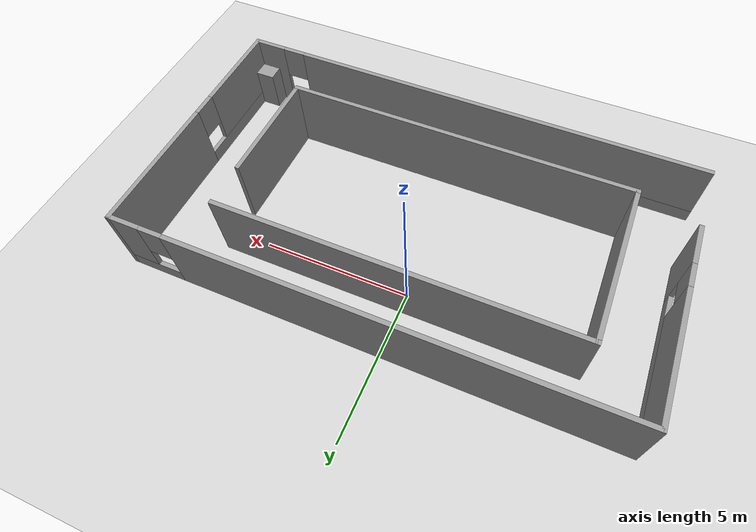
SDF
<sdf version="1.7">
 <world name="default">
  <light name="sun" type="directional">
   <pose>0 0 10 0 -0 0</pose>
   <diffuse>0.8 0.8 0.8 1</diffuse>
   <specular>0.2 0.2 0.2 1</specular>
   <attenuation>
    <range>1000</range>
    <constant>0.9</constant>
    <linear>0.01</linear>
    <quadratic>0.001</quadratic>
   </attenuation>
   <direction>-0.5 0.1 -0.9</direction>
   <spot><inner_angle>0</inner_angle><outer_angle>0</outer_angle><falloff>0</falloff></spot>
  </light>
  <model name="ground_plane">
   <static>1</static>
   <link name="link">
    <collision name="collision">
     <geometry><plane><normal>0 0 1</normal><size>100 100</size></plane></geometry>
     <surface><friction><ode><mu>100</mu><mu2>50</mu2></ode></friction></surface>
    </collision>
    <visual name="visual">
     <cast_shadows>0</cast_shadows>
     <geometry><plane><normal>0 0 1</normal><size>100 100</size></plane></geometry>
     <material>
      <script><uri>file://media/materials/scripts/gazebo.material</uri><name>Gazebo/Grey</name></script>
     </material>
    </visual>
   </link>
  </model>
  <gravity>0 0 -9.8</gravity>
  <magnetic_field>6e-06 2.3e-05 -4.2e-05</magnetic_field>
  <atmosphere type="adiabatic"/>
  <physics type="ode">
   <max_step_size>0.001</max_step_size>
   <real_time_factor>1</real_time_factor>
   <real_time_update_rate>1000</real_time_update_rate>
  </physics>
  <scene><ambient>0.4 0.4 0.4 1</ambient><background>0.7 0.7 0.7 1</background><shadows>1</shadows></scene>
  <spherical_coordinates>
   <surface_model>EARTH_WGS84</surface_model>
   <latitude_deg>0</latitude_deg>
   <longitude_deg>0</longitude_deg>
   <elevation>0</elevation>
   <heading_deg>0</heading_deg>
  </spherical_coordinates>
  <model name="simple_room">
   <pose>0.521818 -2.1502 0 0 -0 0</pose>
   <link name="Wall_10">
    <collision name="Wall_10_Collision">
     <geometry><box><size>4 0.15 2.5</size></box></geometry>
     <pose>0 0 1.25 0 -0 0</pose>
    </collision>
    <visual name="Wall_10_Visual">
     <pose>0 0 1.25 0 -0 0</pose>
     <geometry><box><size>4 0.15 2.5</size></box></geometry>
     <material>
      <script><uri>file://media/materials/scripts/gazebo.material</uri><name>Gazebo/Grey</name></script>
      <ambient>1 1 1 1</ambient>
     </material>
     <meta><layer>0</layer></meta>
    </visual>
    <pose>5.64302 -0.748311 0 0 -0 1.5708</pose>
   </link>
   <link name="Wall_2">
    <pose>-8.175 1.125 0 0 -0 1.5708</pose>
    <visual name="Wall_2_Visual_0">
     <pose>-2.54762 0 1.25 0 -0 0</pose>
     <geometry><box><size>1.40477 0.15 2.5</size></box></geometry>
     <material>
      <script><uri>file://media/materials/scripts/gazebo.material</uri><name>Gazebo/Grey</name></script>
      <ambient>1 1 1 1</ambient>
     </material>
     <meta><layer>0</layer></meta>
    </visual>
    <collision name="Wall_2_Collision_0">
     <geometry><box><size>1.40477 0.15 2.5</size></box></geometry>
     <pose>-2.54762 0 1.25 0 -0 0</pose>
    </collision>
    <visual name="Wall_2_Visual_1">
     <pose>0.702384 0 0.25 0 -0 0</pose>
     <geometry><box><size>5.09523 0.15 0.5</size></box></geometry>
     <material>
      <script><uri>file://media/materials/scripts/gazebo.material</uri><name>Gazebo/Grey</name></script>
      <ambient>1 1 1 1</ambient>
     </material>
     <meta><layer>0</layer></meta>
    </visual>
    <collision name="Wall_2_Collision_1">
     <geometry><box><size>5.09523 0.15 0.5</size></box></geometry>
     <pose>0.702384 0 0.25 0 -0 0</pose>
    </collision>
    <visual name="Wall_2_Visual_2">
     <pose>1.10238 0 1.5 0 -0 0</pose>
     <geometry><box><size>4.29523 0.15 2</size></box></geometry>
     <material>
      <script><uri>file://media/materials/scripts/gazebo.material</uri><name>Gazebo/Grey</name></script>
      <ambient>1 1 1 1</ambient>
     </material>
     <meta><layer>0</layer></meta>
    </visual>
    <collision name="Wall_2_Collision_2">
     <geometry><box><size>4.29523 0.15 2</size></box></geometry>
     <pose>1.10238 0 1.5 0 -0 0</pose>
    </collision>
    <visual name="Wall_2_Visual_3">
     <pose>-1.44523 0 1.9 0 -0 0</pose>
     <geometry><box><size>0.8 0.15 1.2</size></box></geometry>
     <material>
      <script><uri>file://media/materials/scripts/gazebo.material</uri><name>Gazebo/Grey</name></script>
      <ambient>1 1 1 1</ambient>
     </material>
     <meta><layer>0</layer></meta>
    </visual>
    <collision name="Wall_2_Collision_3">
     <geometry><box><size>0.8 0.15 1.2</size></box></geometry>
     <pose>-1.44523 0 1.9 0 -0 0</pose>
    </collision>
   </link>
   <link name="Wall_3">
    <pose>-0 4.3 0 0 -0 0</pose>
    <visual name="Wall_3_Visual_0">
     <pose>-0.970478 0 1.25 0 -0 0</pose>
     <geometry><box><size>14.559 0.15 2.5</size></box></geometry>
     <material>
      <script><uri>file://media/materials/scripts/gazebo.material</uri><name>Gazebo/Grey</name></script>
      <ambient>1 1 1 1</ambient>
     </material>
     <meta><layer>0</layer></meta>
    </visual>
    <collision name="Wall_3_Collision_0">
     <geometry><box><size>14.559 0.15 2.5</size></box></geometry>
     <pose>-0.970478 0 1.25 0 -0 0</pose>
    </collision>
    <visual name="Wall_3_Visual_1">
     <pose>7.27952 0 0.25 0 -0 0</pose>
     <geometry><box><size>1.94096 0.15 0.5</size></box></geometry>
     <material>
      <script><uri>file://media/materials/scripts/gazebo.material</uri><name>Gazebo/Grey</name></script>
      <ambient>1 1 1 1</ambient>
     </material>
     <meta><layer>0</layer></meta>
    </visual>
    <collision name="Wall_3_Collision_1">
     <geometry><box><size>1.94096 0.15 0.5</size></box></geometry>
     <pose>7.27952 0 0.25 0 -0 0</pose>
    </collision>
    <visual name="Wall_3_Visual_2">
     <pose>7.67952 0 1.5 0 -0 0</pose>
     <geometry><box><size>1.14096 0.15 2</size></box></geometry>
     <material>
      <script><uri>file://media/materials/scripts/gazebo.material</uri><name>Gazebo/Grey</name></script>
      <ambient>1 1 1 1</ambient>
     </material>
     <meta><layer>0</layer></meta>
    </visual>
    <collision name="Wall_3_Collision_2">
     <geometry><box><size>1.14096 0.15 2</size></box></geometry>
     <pose>7.67952 0 1.5 0 -0 0</pose>
    </collision>
    <visual name="Wall_3_Visual_3">
     <pose>6.70904 0 1.9 0 -0 0</pose>
     <geometry><box><size>0.8 0.15 1.2</size></box></geometry>
     <material>
      <script><uri>file://media/materials/scripts/gazebo.material</uri><name>Gazebo/Grey</name></script>
      <ambient>1 1 1 1</ambient>
     </material>
     <meta><layer>0</layer></meta>
    </visual>
    <collision name="Wall_3_Collision_3">
     <geometry><box><size>0.8 0.15 1.2</size></box></geometry>
     <pose>6.70904 0 1.9 0 -0 0</pose>
    </collision>
   </link>
   <link name="Wall_4">
    <pose>8.175 0 0 0 -0 -1.5708</pose>
    <visual name="Wall_4_Visual_0">
     <pose>-2.02625 0 1.25 0 -0 0</pose>
     <geometry><box><size>4.6975 0.15 2.5</size></box></geometry>
     <material>
      <script><uri>file://media/materials/scripts/gazebo.material</uri><name>Gazebo/Grey</name></script>
      <ambient>1 1 1 1</ambient>
     </material>
     <meta><layer>0</layer></meta>
    </visual>
    <collision name="Wall_4_Collision_0">
     <geometry><box><size>4.6975 0.15 2.5</size></box></geometry>
     <pose>-2.02625 0 1.25 0 -0 0</pose>
    </collision>
    <visual name="Wall_4_Visual_1">
     <pose>2.34875 0 0.25 0 -0 0</pose>
     <geometry><box><size>4.0525 0.15 0.5</size></box></geometry>
     <material>
      <script><uri>file://media/materials/scripts/gazebo.material</uri><name>Gazebo/Grey</name></script>
      <ambient>1 1 1 1</ambient>
     </material>
     <meta><layer>0</layer></meta>
    </visual>
    <collision name="Wall_4_Collision_1">
     <geometry><box><size>4.0525 0.15 0.5</size></box></geometry>
     <pose>2.34875 0 0.25 0 -0 0</pose>
    </collision>
    <visual name="Wall_4_Visual_2">
     <pose>2.74875 0 1.5 0 -0 0</pose>
     <geometry><box><size>3.2525 0.15 2</size></box></geometry>
     <material>
      <script><uri>file://media/materials/scripts/gazebo.material</uri><name>Gazebo/Grey</name></script>
      <ambient>1 1 1 1</ambient>
     </material>
     <meta><layer>0</layer></meta>
    </visual>
    <collision name="Wall_4_Collision_2">
     <geometry><box><size>3.2525 0.15 2</size></box></geometry>
     <pose>2.74875 0 1.5 0 -0 0</pose>
    </collision>
    <visual name="Wall_4_Visual_3">
     <pose>0.722504 0 1.9 0 -0 0</pose>
     <geometry><box><size>0.8 0.15 1.2</size></box></geometry>
     <material>
      <script><uri>file://media/materials/scripts/gazebo.material</uri><name>Gazebo/Grey</name></script>
      <ambient>1 1 1 1</ambient>
     </material>
     <meta><layer>0</layer></meta>
    </visual>
    <collision name="Wall_4_Collision_3">
     <geometry><box><size>0.8 0.15 1.2</size></box></geometry>
     <pose>0.722504 0 1.9 0 -0 0</pose>
    </collision>
   </link>
   <link name="Wall_5">
    <pose>-0 -4.3 0 0 -0 3.14159</pose>
    <visual name="Wall_5_Visual_0">
     <pose>-7.64935 0 1.25 0 -0 0</pose>
     <geometry><box><size>1.2013 0.15 2.5</size></box></geometry>
     <material>
      <script><uri>file://media/materials/scripts/gazebo.material</uri><name>Gazebo/Grey</name></script>
      <ambient>1 1 1 1</ambient>
     </material>
     <meta><layer>0</layer></meta>
    </visual>
    <collision name="Wall_5_Collision_0">
     <geometry><box><size>1.2013 0.15 2.5</size></box></geometry>
     <pose>-7.64935 0 1.25 0 -0 0</pose>
    </collision>
    <visual name="Wall_5_Visual_1">
     <pose>0.600649 0 0.25 0 -0 0</pose>
     <geometry><box><size>15.2987 0.15 0.5</size></box></geometry>
     <material>
      <script><uri>file://media/materials/scripts/gazebo.material</uri><name>Gazebo/Grey</name></script>
      <ambient>1 1 1 1</ambient>
     </material>
     <meta><layer>0</layer></meta>
    </visual>
    <collision name="Wall_5_Collision_1">
     <geometry><box><size>15.2987 0.15 0.5</size></box></geometry>
     <pose>0.600649 0 0.25 0 -0 0</pose>
    </collision>
    <visual name="Wall_5_Visual_2">
     <pose>1.00065 0 1.5 0 -0 0</pose>
     <geometry><box><size>14.4987 0.15 2</size></box></geometry>
     <material>
      <script><uri>file://media/materials/scripts/gazebo.material</uri><name>Gazebo/Grey</name></script>
      <ambient>1 1 1 1</ambient>
     </material>
     <meta><layer>0</layer></meta>
    </visual>
    <collision name="Wall_5_Collision_2">
     <geometry><box><size>14.4987 0.15 2</size></box></geometry>
     <pose>1.00065 0 1.5 0 -0 0</pose>
    </collision>
    <visual name="Wall_5_Visual_3">
     <pose>-6.6487 0 1.9 0 -0 0</pose>
     <geometry><box><size>0.8 0.15 1.2</size></box></geometry>
     <material>
      <script><uri>file://media/materials/scripts/gazebo.material</uri><name>Gazebo/Grey</name></script>
      <ambient>1 1 1 1</ambient>
     </material>
     <meta><layer>0</layer></meta>
    </visual>
    <collision name="Wall_5_Collision_3">
     <geometry><box><size>0.8 0.15 1.2</size></box></geometry>
     <pose>-6.6487 0 1.9 0 -0 0</pose>
    </collision>
   </link>
   <link name="Wall_7">
    <collision name="Wall_7_Collision">
     <geometry><box><size>12 0.15 2.5</size></box></geometry>
     <pose>0 0 1.25 0 -0 0</pose>
    </collision>
    <visual name="Wall_7_Visual">
     <pose>0 0 1.25 0 -0 0</pose>
     <geometry><box><size>12 0.15 2.5</size></box></geometry>
     <material>
      <script><uri>file://media/materials/scripts/gazebo.material</uri><name>Gazebo/Grey</name></script>
      <ambient>1 1 1 1</ambient>
     </material>
     <meta><layer>0</layer></meta>
    </visual>
    <pose>-0.281976 2.67669 0 0 -0 3.14159</pose>
   </link>
   <link name="Wall_8">
    <collision name="Wall_8_Collision">
     <geometry><box><size>5.5 0.15 2.5</size></box></geometry>
     <pose>0 0 1.25 0 -0 0</pose>
    </collision>
    <visual name="Wall_8_Visual">
     <pose>0 0 1.25 0 -0 0</pose>
     <geometry><box><size>5.5 0.15 2.5</size></box></geometry>
     <material>
      <script><uri>file://media/materials/scripts/gazebo.material</uri><name>Gazebo/Grey</name></script>
      <ambient>1 1 1 1</ambient>
     </material>
     <meta><layer>0</layer></meta>
    </visual>
    <pose>-6.20698 0.001689 0 0 -0 -1.5708</pose>
   </link>
   <link name="Wall_9">
    <collision name="Wall_9_Collision">
     <geometry><box><size>12 0.15 2.5</size></box></geometry>
     <pose>0 0 1.25 0 -0 0</pose>
    </collision>
    <visual name="Wall_9_Visual">
     <pose>0 0 1.25 0 -0 0</pose>
     <geometry><box><size>12 0.15 2.5</size></box></geometry>
     <material>
      <script><uri>file://media/materials/scripts/gazebo.material</uri><name>Gazebo/Grey</name></script>
      <ambient>1 1 1 1</ambient>
     </material>
     <meta><layer>0</layer></meta>
    </visual>
    <pose>-0.281976 -2.67331 0 0 -0 0</pose>
   </link>
   <static>1</static>
  </model>
  <model name="unit_box">
   <pose>8.28954 -6.1035 0.735969 0 2e-06 1e-05</pose>
   <link name="link">
    <inertial>
     <mass>1</mass>
     <inertia>
      <ixx>0.166667</ixx>
      <ixy>0</ixy>
      <ixz>0</ixz>
      <iyy>0.166667</iyy>
      <iyz>0</iyz>
      <izz>0.166667</izz>
     </inertia>
    </inertial>
    <collision name="collision"><geometry><box><size>0.664427 0.543312 1.47194</size></box></geometry></collision>
    <visual name="visual">
     <geometry><box><size>0.664427 0.543312 1.47194</size></box></geometry>
     <material>
      <script><name>Gazebo/Grey</name><uri>file://media/materials/scripts/gazebo.material</uri></script>
     </material>
    </visual>
   </link>
  </model>
 </world>
</sdf>
